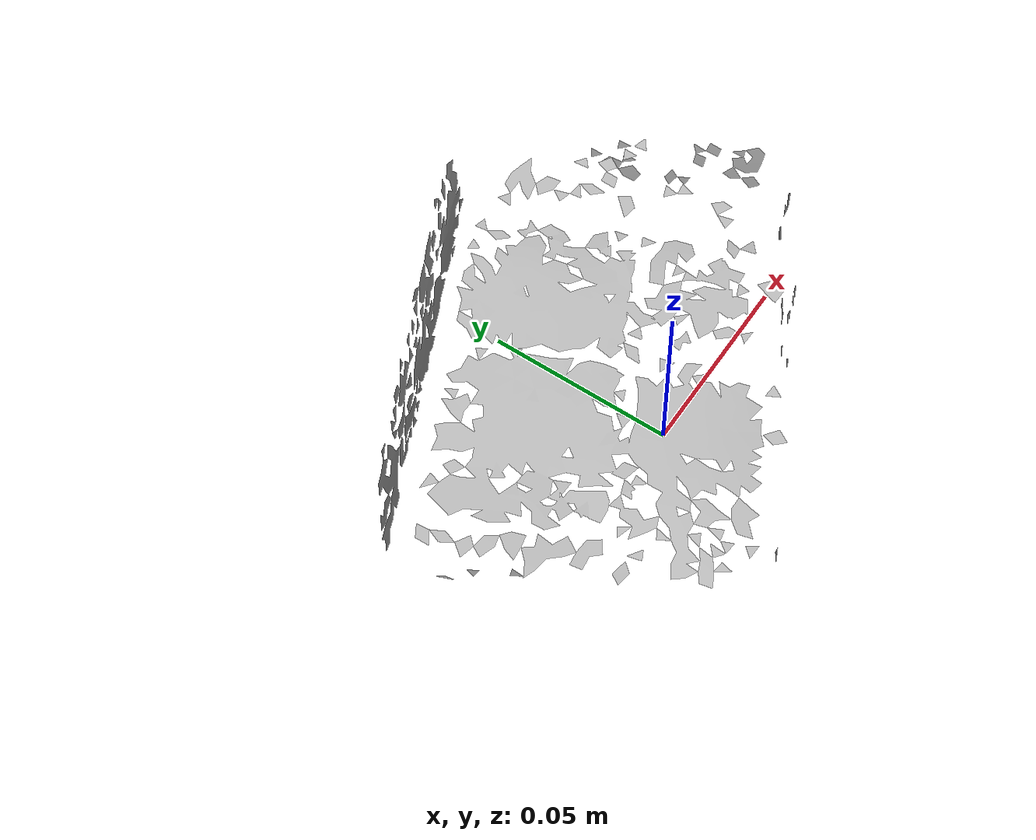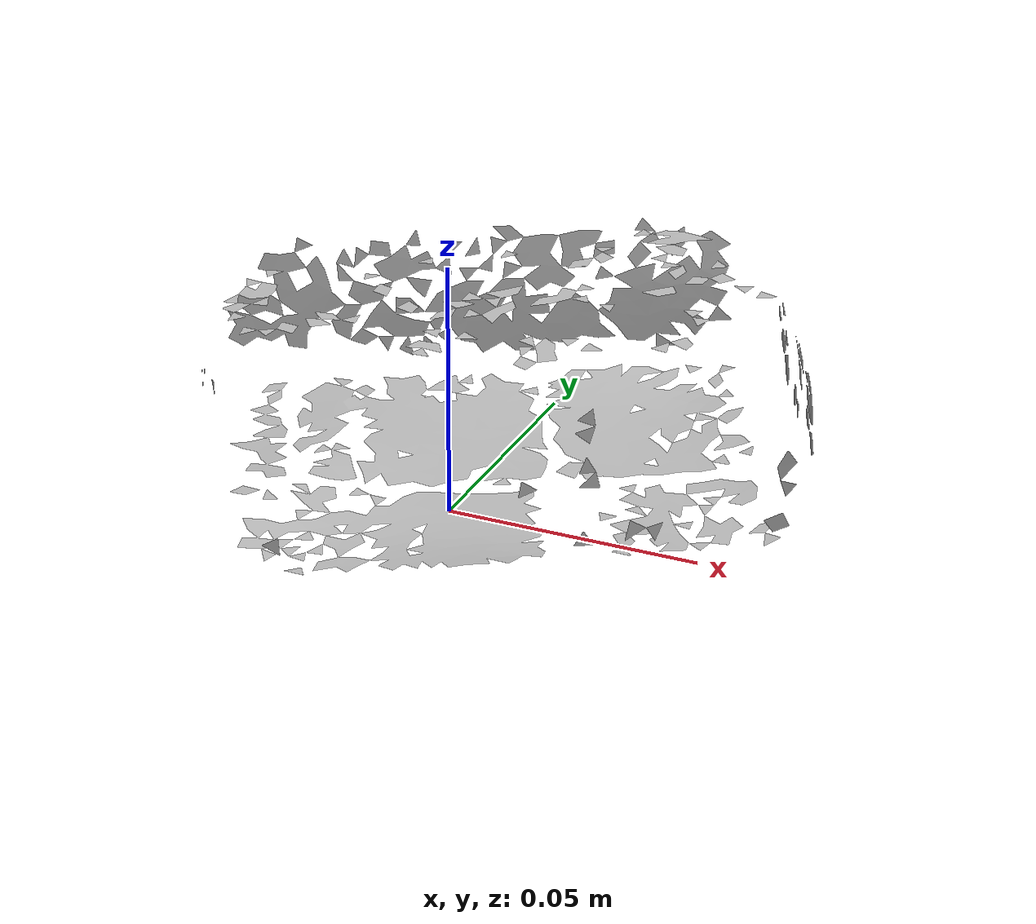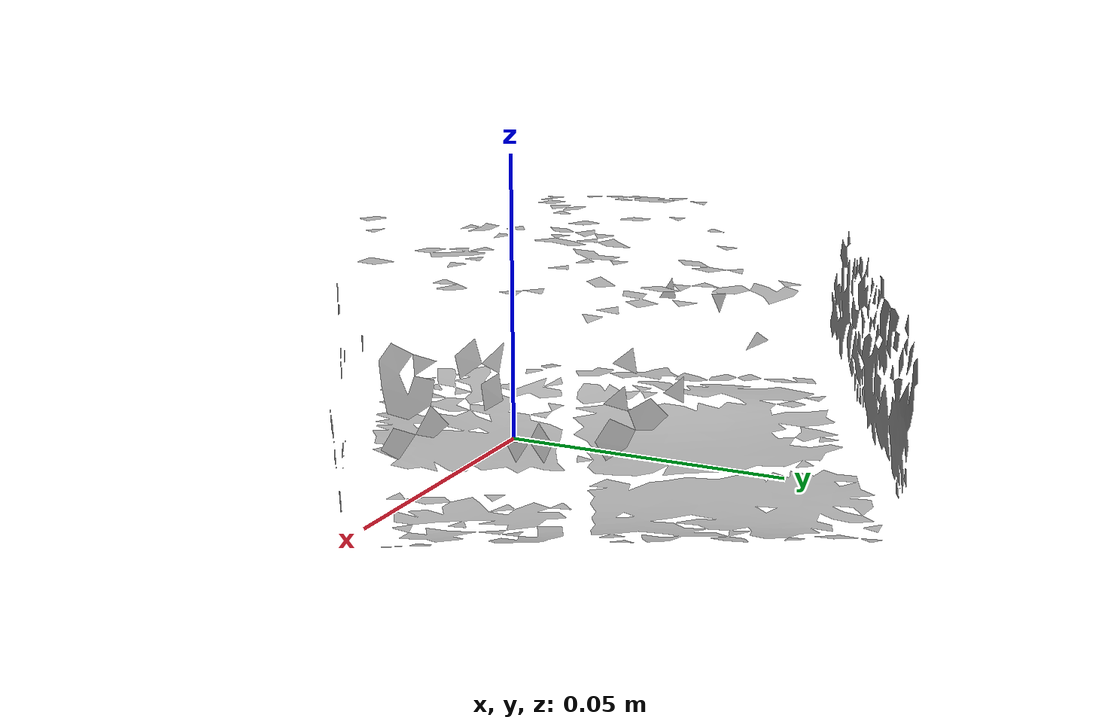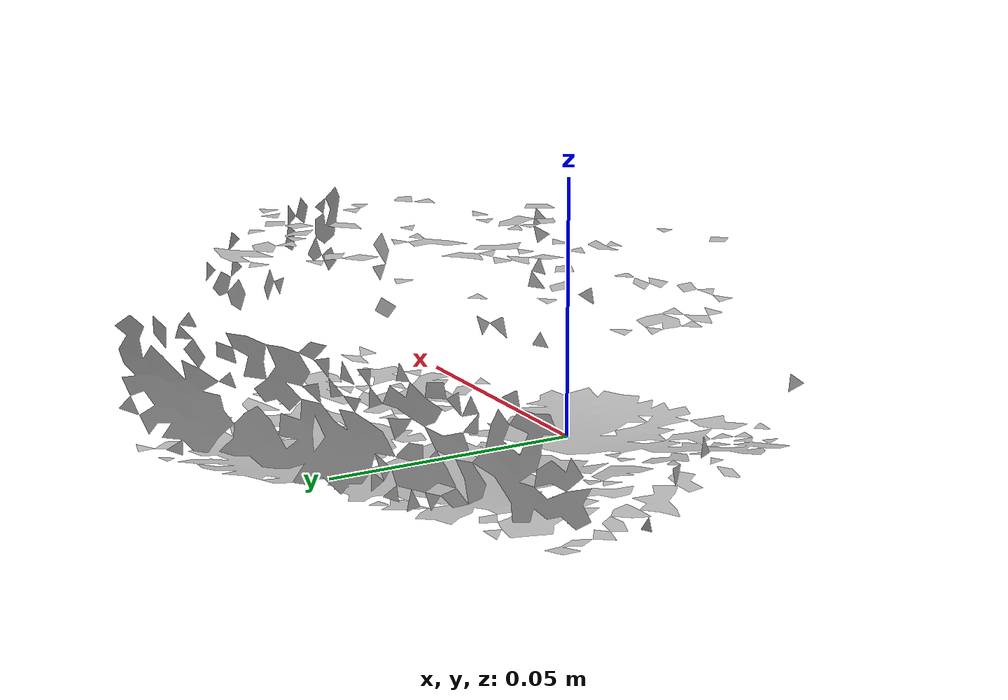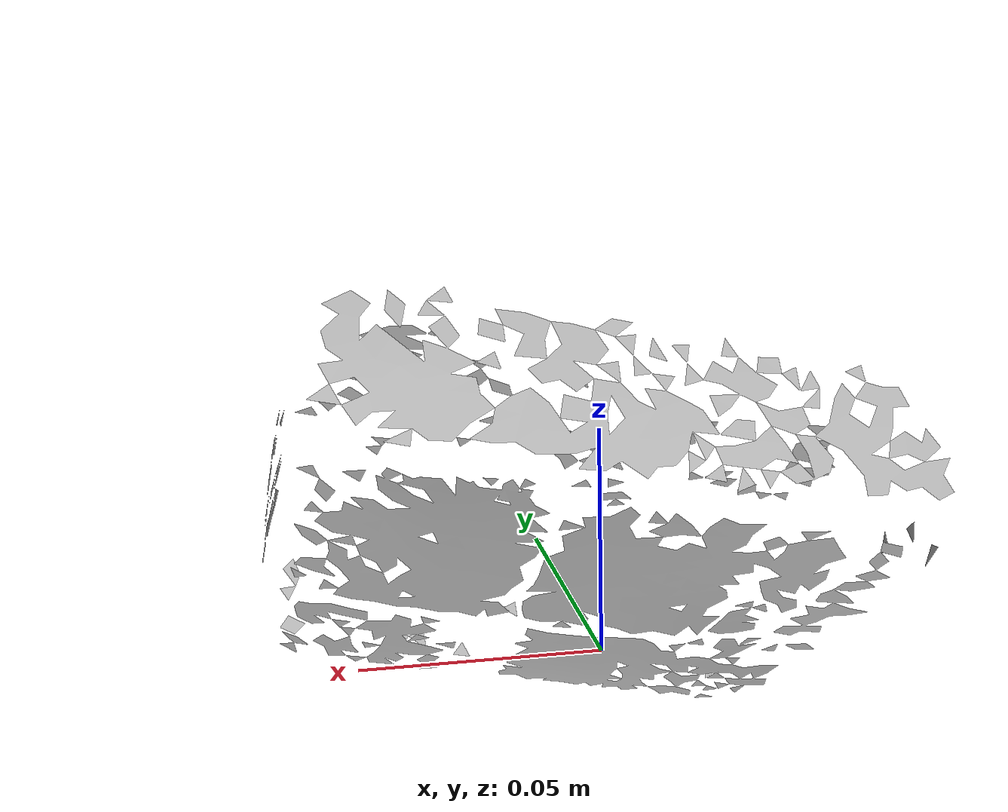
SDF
<?xml version="1.0" ?>
<sdf version="1.4">
  <model name='ycb_008_pudding_box'>
    <link name='body'>
      <inertial>
        <mass>0.187</mass>
        <pose>0.00151764956966 0.018795882065 0.0186577019787 0 0 0</pose>
        <inertia>
          <ixx>0.000151722587612</ixx>
          <ixy>-2.74392307099e-05</ixy>
          <ixz>-3.63567015346e-06</ixz>
          <iyy>0.000189163897167</iyy>
          <iyz>-1.15177563596e-06</iyz>
          <izz>0.000301634652645</izz>
        </inertia>
      </inertial>
      <visual name='ycb_008_pudding_box_visual'>
        <pose>0 0 0 0 0 0</pose>
        <geometry>
          <mesh>
            <uri>model://ycb_008_pudding_box/meshes/textured.dae</uri>
          </mesh>
        </geometry>
      </visual>
      <collision name='ycb_008_pudding_box_collision'>
        <pose>0 0 0 0 0 0</pose>
        <geometry>
          <mesh>
            <uri>model://ycb_008_pudding_box/meshes/nontextured.stl</uri>
          </mesh>
        </geometry>
        <max_contacts>10</max_contacts>
      </collision>
    </link>
  </model>
</sdf>
